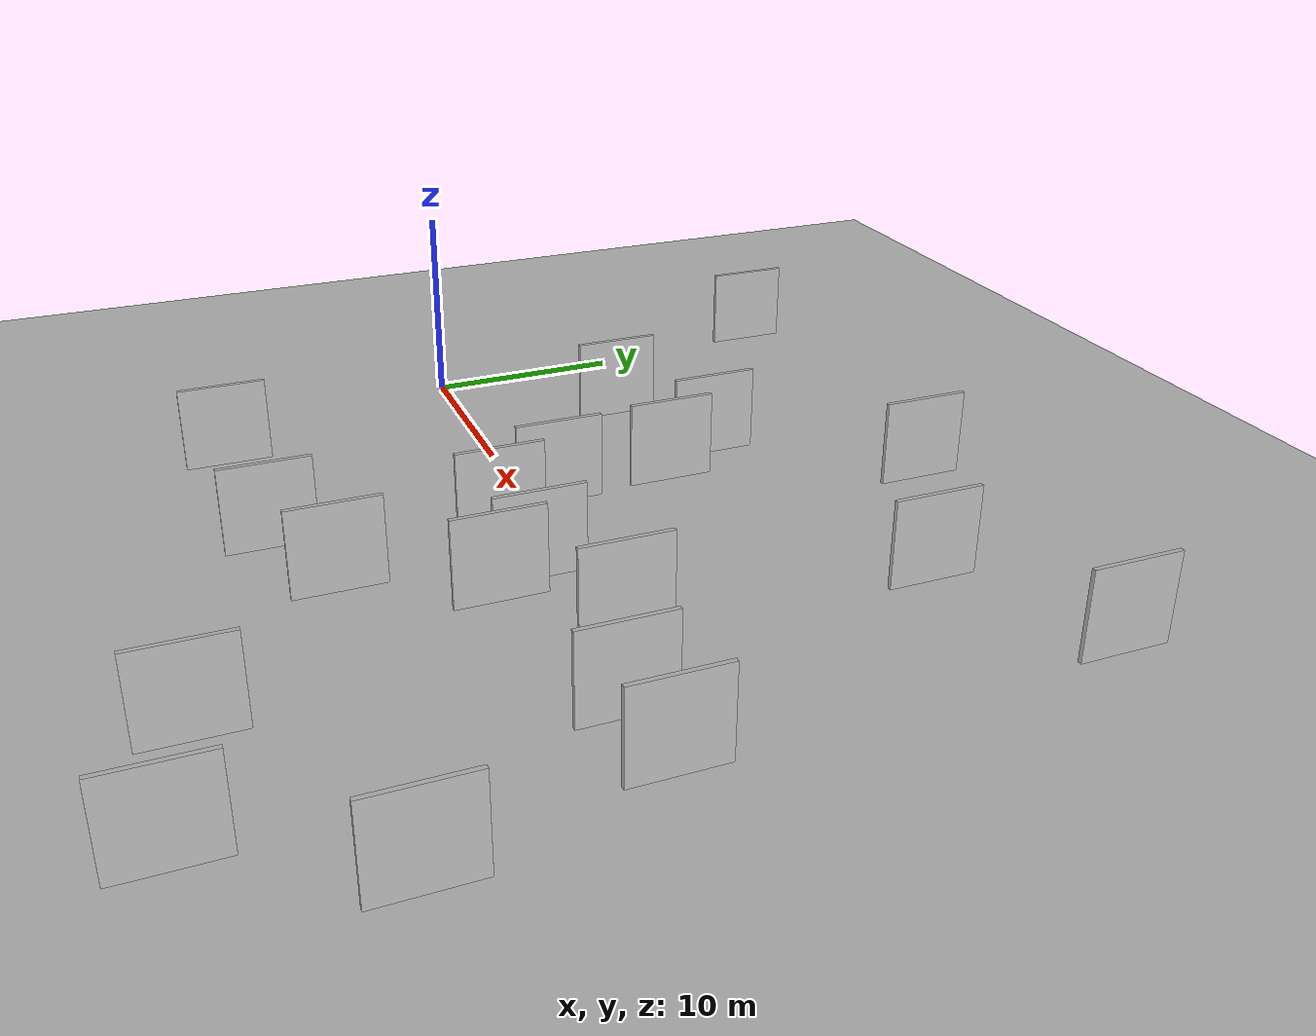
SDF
<?xml version="1.0" encoding="utf-8"?>

<sdf version="1.6">

   <world name="default">

      <gui fullscreen="0">

         <camera name="user_camera">

            <pose>-15 0 4.57585 0 0 0</pose>

            <view_controller>orbit</view_controller>

         </camera>

      </gui>

      <scene>

         <sky>

           <clouds>

             <speed>12</speed>

           </clouds>

         </sky>

         <ambient>0.4 0.4 0.4 1</ambient>

         <background>0.7 0.7 0.7 1</background>

         <shadows>1</shadows>

      </scene>

      <gravity>0 0 -9.8066</gravity>

      <magnetic_field>6e-06 2.3e-05 -4.2e-05</magnetic_field>

      <physics default="0" name="default_physics" type="ode">

         <ode>

            <solver>

               <type>quick</type>

               <iters>10</iters>

               <sor>1.0</sor>

               <use_dynamic_moi_rescaling>0</use_dynamic_moi_rescaling>

            </solver>

            <constraints>

               <cfm>0</cfm>

               <erp>0.2</erp>

               <contact_max_correcting_vel>100</contact_max_correcting_vel>

               <contact_surface_layer>0.001</contact_surface_layer>

            </constraints>

         </ode>

         <max_step_size>0.004</max_step_size>

         <real_time_factor>1</real_time_factor>

         <real_time_update_rate>250</real_time_update_rate>

      </physics>

      <light name="sun" type="directional">

         <cast_shadows>1</cast_shadows>

         <pose>0 0 10 0 0 0</pose>

         <diffuse>0.8 0.8 0.8 1</diffuse>

         <specular>0.2 0.2 0.2 1</specular>

         <attenuation>

            <range>1000</range>

            <constant>0.9</constant>

            <linear>0.01</linear>

            <quadratic>0.001</quadratic>

         </attenuation>

         <direction>-0.5 0.1 -0.9</direction>

      </light>

      <include>

         <name>ground_plane_1</name>

         <uri>model://HANNAS_ground_plane</uri>

         <pose>0 0 0  0 0 0</pose>

      </include>

      <include>

         <name>ground_plane_2</name>

         <uri>model://HANNAS_ground_plane</uri>

         <pose>100 0 0  0 0 0</pose>

      </include>

      <model name="HANNAS_wall_1">

         <static>1</static>

         <pose frame="">32.8743 -17.5760 2.5 0.000000 0.000000 1.570796</pose>

         <link name="link">

            <pose frame="">0 0 2.00 0 0 0</pose>

            <collision name="collision">

               <geometry>

                  <box>

                     <size>4.00 0.2 4.00</size>

                  </box>

               </geometry>

               <max_contacts>10</max_contacts>

               <surface>

                  <contact>

                     <ode/>

                  </contact>

                  <bounce/>

                  <friction>

                     <torsional>

                        <ode/>

                     </torsional>

                     <ode/>

                  </friction>

               </surface>

            </collision>

            <visual name="visual">

               <cast_shadows>0</cast_shadows>

               <geometry>

                  <box>

                     <size>4.00 0.2 4.00</size>

                  </box>

               </geometry>

               <material>

                  <script>

                     <uri>model://HANNAS_wall/materials/scripts</uri>

                     <uri>model://HANNAS_wall/materials/textures</uri>

                     <name>vrc/HANNAS_wall</name>

                  </script>

               </material>

            </visual>

            <self_collide>0</self_collide>

            <enable_wind>0</enable_wind>

            <kinematic>0</kinematic>

         </link>

      </model>

      <model name="HANNAS_wall_2">

         <static>1</static>

         <pose frame="">28.0144 -5.0331 2.5 0.000000 0.000000 1.570796</pose>

         <link name="link">

            <pose frame="">0 0 2.00 0 0 0</pose>

            <collision name="collision">

               <geometry>

                  <box>

                     <size>4.00 0.2 4.00</size>

                  </box>

               </geometry>

               <max_contacts>10</max_contacts>

               <surface>

                  <contact>

                     <ode/>

                  </contact>

                  <bounce/>

                  <friction>

                     <torsional>

                        <ode/>

                     </torsional>

                     <ode/>

                  </friction>

               </surface>

            </collision>

            <visual name="visual">

               <cast_shadows>0</cast_shadows>

               <geometry>

                  <box>

                     <size>4.00 0.2 4.00</size>

                  </box>

               </geometry>

               <material>

                  <script>

                     <uri>model://HANNAS_wall/materials/scripts</uri>

                     <uri>model://HANNAS_wall/materials/textures</uri>

                     <name>vrc/HANNAS_wall</name>

                  </script>

               </material>

            </visual>

            <self_collide>0</self_collide>

            <enable_wind>0</enable_wind>

            <kinematic>0</kinematic>

         </link>

      </model>

      <model name="HANNAS_wall_3">

         <static>1</static>

         <pose frame="">18.4415 8.6974 2.5 0.000000 0.000000 1.570796</pose>

         <link name="link">

            <pose frame="">0 0 2.00 0 0 0</pose>

            <collision name="collision">

               <geometry>

                  <box>

                     <size>4.00 0.2 4.00</size>

                  </box>

               </geometry>

               <max_contacts>10</max_contacts>

               <surface>

                  <contact>

                     <ode/>

                  </contact>

                  <bounce/>

                  <friction>

                     <torsional>

                        <ode/>

                     </torsional>

                     <ode/>

                  </friction>

               </surface>

            </collision>

            <visual name="visual">

               <cast_shadows>0</cast_shadows>

               <geometry>

                  <box>

                     <size>4.00 0.2 4.00</size>

                  </box>

               </geometry>

               <material>

                  <script>

                     <uri>model://HANNAS_wall/materials/scripts</uri>

                     <uri>model://HANNAS_wall/materials/textures</uri>

                     <name>vrc/HANNAS_wall</name>

                  </script>

               </material>

            </visual>

            <self_collide>0</self_collide>

            <enable_wind>0</enable_wind>

            <kinematic>0</kinematic>

         </link>

      </model>

      <model name="HANNAS_wall_4">

         <static>1</static>

         <pose frame="">33.0097 11.7984 2.5 0.000000 0.000000 1.570796</pose>

         <link name="link">

            <pose frame="">0 0 2.00 0 0 0</pose>

            <collision name="collision">

               <geometry>

                  <box>

                     <size>4.00 0.2 4.00</size>

                  </box>

               </geometry>

               <max_contacts>10</max_contacts>

               <surface>

                  <contact>

                     <ode/>

                  </contact>

                  <bounce/>

                  <friction>

                     <torsional>

                        <ode/>

                     </torsional>

                     <ode/>

                  </friction>

               </surface>

            </collision>

            <visual name="visual">

               <cast_shadows>0</cast_shadows>

               <geometry>

                  <box>

                     <size>4.00 0.2 4.00</size>

                  </box>

               </geometry>

               <material>

                  <script>

                     <uri>model://HANNAS_wall/materials/scripts</uri>

                     <uri>model://HANNAS_wall/materials/textures</uri>

                     <name>vrc/HANNAS_wall</name>

                  </script>

               </material>

            </visual>

            <self_collide>0</self_collide>

            <enable_wind>0</enable_wind>

            <kinematic>0</kinematic>

         </link>

      </model>

      <model name="HANNAS_wall_5">

         <static>1</static>

         <pose frame="">11.1217 -13.3748 2.5 0.000000 0.000000 1.570796</pose>

         <link name="link">

            <pose frame="">0 0 2.00 0 0 0</pose>

            <collision name="collision">

               <geometry>

                  <box>

                     <size>4.00 0.2 4.00</size>

                  </box>

               </geometry>

               <max_contacts>10</max_contacts>

               <surface>

                  <contact>

                     <ode/>

                  </contact>

                  <bounce/>

                  <friction>

                     <torsional>

                        <ode/>

                     </torsional>

                     <ode/>

                  </friction>

               </surface>

            </collision>

            <visual name="visual">

               <cast_shadows>0</cast_shadows>

               <geometry>

                  <box>

                     <size>4.00 0.2 4.00</size>

                  </box>

               </geometry>

               <material>

                  <script>

                     <uri>model://HANNAS_wall/materials/scripts</uri>

                     <uri>model://HANNAS_wall/materials/textures</uri>

                     <name>vrc/HANNAS_wall</name>

                  </script>

               </material>

            </visual>

            <self_collide>0</self_collide>

            <enable_wind>0</enable_wind>

            <kinematic>0</kinematic>

         </link>

      </model>

      <model name="HANNAS_wall_6">

         <static>1</static>

         <pose frame="">40.7295 -2.8819 2.5 0.000000 0.000000 1.570796</pose>

         <link name="link">

            <pose frame="">0 0 2.00 0 0 0</pose>

            <collision name="collision">

               <geometry>

                  <box>

                     <size>4.00 0.2 4.00</size>

                  </box>

               </geometry>

               <max_contacts>10</max_contacts>

               <surface>

                  <contact>

                     <ode/>

                  </contact>

                  <bounce/>

                  <friction>

                     <torsional>

                        <ode/>

                     </torsional>

                     <ode/>

                  </friction>

               </surface>

            </collision>

            <visual name="visual">

               <cast_shadows>0</cast_shadows>

               <geometry>

                  <box>

                     <size>4.00 0.2 4.00</size>

                  </box>

               </geometry>

               <material>

                  <script>

                     <uri>model://HANNAS_wall/materials/scripts</uri>

                     <uri>model://HANNAS_wall/materials/textures</uri>

                     <name>vrc/HANNAS_wall</name>

                  </script>

               </material>

            </visual>

            <self_collide>0</self_collide>

            <enable_wind>0</enable_wind>

            <kinematic>0</kinematic>

         </link>

      </model>

      <model name="HANNAS_wall_7">

         <static>1</static>

         <pose frame="">20.7189 0.0154 2.5 0.000000 0.000000 1.570796</pose>

         <link name="link">

            <pose frame="">0 0 2.00 0 0 0</pose>

            <collision name="collision">

               <geometry>

                  <box>

                     <size>4.00 0.2 4.00</size>

                  </box>

               </geometry>

               <max_contacts>10</max_contacts>

               <surface>

                  <contact>

                     <ode/>

                  </contact>

                  <bounce/>

                  <friction>

                     <torsional>

                        <ode/>

                     </torsional>

                     <ode/>

                  </friction>

               </surface>

            </collision>

            <visual name="visual">

               <cast_shadows>0</cast_shadows>

               <geometry>

                  <box>

                     <size>4.00 0.2 4.00</size>

                  </box>

               </geometry>

               <material>

                  <script>

                     <uri>model://HANNAS_wall/materials/scripts</uri>

                     <uri>model://HANNAS_wall/materials/textures</uri>

                     <name>vrc/HANNAS_wall</name>

                  </script>

               </material>

            </visual>

            <self_collide>0</self_collide>

            <enable_wind>0</enable_wind>

            <kinematic>0</kinematic>

         </link>

      </model>

      <model name="HANNAS_wall_8">

         <static>1</static>

         <pose frame="">26.8570 -2.9525 2.5 0.000000 0.000000 1.570796</pose>

         <link name="link">

            <pose frame="">0 0 2.00 0 0 0</pose>

            <collision name="collision">

               <geometry>

                  <box>

                     <size>4.00 0.2 4.00</size>

                  </box>

               </geometry>

               <max_contacts>10</max_contacts>

               <surface>

                  <contact>

                     <ode/>

                  </contact>

                  <bounce/>

                  <friction>

                     <torsional>

                        <ode/>

                     </torsional>

                     <ode/>

                  </friction>

               </surface>

            </collision>

            <visual name="visual">

               <cast_shadows>0</cast_shadows>

               <geometry>

                  <box>

                     <size>4.00 0.2 4.00</size>

                  </box>

               </geometry>

               <material>

                  <script>

                     <uri>model://HANNAS_wall/materials/scripts</uri>

                     <uri>model://HANNAS_wall/materials/textures</uri>

                     <name>vrc/HANNAS_wall</name>

                  </script>

               </material>

            </visual>

            <self_collide>0</self_collide>

            <enable_wind>0</enable_wind>

            <kinematic>0</kinematic>

         </link>

      </model>

      <model name="HANNAS_wall_9">

         <static>1</static>

         <pose frame="">37.1280 -3.2717 2.5 0.000000 0.000000 1.570796</pose>

         <link name="link">

            <pose frame="">0 0 2.00 0 0 0</pose>

            <collision name="collision">

               <geometry>

                  <box>

                     <size>4.00 0.2 4.00</size>

                  </box>

               </geometry>

               <max_contacts>10</max_contacts>

               <surface>

                  <contact>

                     <ode/>

                  </contact>

                  <bounce/>

                  <friction>

                     <torsional>

                        <ode/>

                     </torsional>

                     <ode/>

                  </friction>

               </surface>

            </collision>

            <visual name="visual">

               <cast_shadows>0</cast_shadows>

               <geometry>

                  <box>

                     <size>4.00 0.2 4.00</size>

                  </box>

               </geometry>

               <material>

                  <script>

                     <uri>model://HANNAS_wall/materials/scripts</uri>

                     <uri>model://HANNAS_wall/materials/textures</uri>

                     <name>vrc/HANNAS_wall</name>

                  </script>

               </material>

            </visual>

            <self_collide>0</self_collide>

            <enable_wind>0</enable_wind>

            <kinematic>0</kinematic>

         </link>

      </model>

      <model name="HANNAS_wall_10">

         <static>1</static>

         <pose frame="">12.4296 6.0405 2.5 0.000000 0.000000 1.570796</pose>

         <link name="link">

            <pose frame="">0 0 2.00 0 0 0</pose>

            <collision name="collision">

               <geometry>

                  <box>

                     <size>4.00 0.2 4.00</size>

                  </box>

               </geometry>

               <max_contacts>10</max_contacts>

               <surface>

                  <contact>

                     <ode/>

                  </contact>

                  <bounce/>

                  <friction>

                     <torsional>

                        <ode/>

                     </torsional>

                     <ode/>

                  </friction>

               </surface>

            </collision>

            <visual name="visual">

               <cast_shadows>0</cast_shadows>

               <geometry>

                  <box>

                     <size>4.00 0.2 4.00</size>

                  </box>

               </geometry>

               <material>

                  <script>

                     <uri>model://HANNAS_wall/materials/scripts</uri>

                     <uri>model://HANNAS_wall/materials/textures</uri>

                     <name>vrc/HANNAS_wall</name>

                  </script>

               </material>

            </visual>

            <self_collide>0</self_collide>

            <enable_wind>0</enable_wind>

            <kinematic>0</kinematic>

         </link>

      </model>

      <model name="HANNAS_wall_11">

         <static>1</static>

         <pose frame="">43.0251 -11.9939 2.5 0.000000 0.000000 1.570796</pose>

         <link name="link">

            <pose frame="">0 0 2.00 0 0 0</pose>

            <collision name="collision">

               <geometry>

                  <box>

                     <size>4.00 0.2 4.00</size>

                  </box>

               </geometry>

               <max_contacts>10</max_contacts>

               <surface>

                  <contact>

                     <ode/>

                  </contact>

                  <bounce/>

                  <friction>

                     <torsional>

                        <ode/>

                     </torsional>

                     <ode/>

                  </friction>

               </surface>

            </collision>

            <visual name="visual">

               <cast_shadows>0</cast_shadows>

               <geometry>

                  <box>

                     <size>4.00 0.2 4.00</size>

                  </box>

               </geometry>

               <material>

                  <script>

                     <uri>model://HANNAS_wall/materials/scripts</uri>

                     <uri>model://HANNAS_wall/materials/textures</uri>

                     <name>vrc/HANNAS_wall</name>

                  </script>

               </material>

            </visual>

            <self_collide>0</self_collide>

            <enable_wind>0</enable_wind>

            <kinematic>0</kinematic>

         </link>

      </model>

      <model name="HANNAS_wall_12">

         <static>1</static>

         <pose frame="">24.5792 16.5338 2.5 0.000000 0.000000 1.570796</pose>

         <link name="link">

            <pose frame="">0 0 2.00 0 0 0</pose>

            <collision name="collision">

               <geometry>

                  <box>

                     <size>4.00 0.2 4.00</size>

                  </box>

               </geometry>

               <max_contacts>10</max_contacts>

               <surface>

                  <contact>

                     <ode/>

                  </contact>

                  <bounce/>

                  <friction>

                     <torsional>

                        <ode/>

                     </torsional>

                     <ode/>

                  </friction>

               </surface>

            </collision>

            <visual name="visual">

               <cast_shadows>0</cast_shadows>

               <geometry>

                  <box>

                     <size>4.00 0.2 4.00</size>

                  </box>

               </geometry>

               <material>

                  <script>

                     <uri>model://HANNAS_wall/materials/scripts</uri>

                     <uri>model://HANNAS_wall/materials/textures</uri>

                     <name>vrc/HANNAS_wall</name>

                  </script>

               </material>

            </visual>

            <self_collide>0</self_collide>

            <enable_wind>0</enable_wind>

            <kinematic>0</kinematic>

         </link>

      </model>

      <model name="HANNAS_wall_13">

         <static>1</static>

         <pose frame="">20.4362 5.5870 2.5 0.000000 0.000000 1.570796</pose>

         <link name="link">

            <pose frame="">0 0 2.00 0 0 0</pose>

            <collision name="collision">

               <geometry>

                  <box>

                     <size>4.00 0.2 4.00</size>

                  </box>

               </geometry>

               <max_contacts>10</max_contacts>

               <surface>

                  <contact>

                     <ode/>

                  </contact>

                  <bounce/>

                  <friction>

                     <torsional>

                        <ode/>

                     </torsional>

                     <ode/>

                  </friction>

               </surface>

            </collision>

            <visual name="visual">

               <cast_shadows>0</cast_shadows>

               <geometry>

                  <box>

                     <size>4.00 0.2 4.00</size>

                  </box>

               </geometry>

               <material>

                  <script>

                     <uri>model://HANNAS_wall/materials/scripts</uri>

                     <uri>model://HANNAS_wall/materials/textures</uri>

                     <name>vrc/HANNAS_wall</name>

                  </script>

               </material>

            </visual>

            <self_collide>0</self_collide>

            <enable_wind>0</enable_wind>

            <kinematic>0</kinematic>

         </link>

      </model>

      <model name="HANNAS_wall_14">

         <static>1</static>

         <pose frame="">20.2271 -12.8143 2.5 0.000000 0.000000 1.570796</pose>

         <link name="link">

            <pose frame="">0 0 2.00 0 0 0</pose>

            <collision name="collision">

               <geometry>

                  <box>

                     <size>4.00 0.2 4.00</size>

                  </box>

               </geometry>

               <max_contacts>10</max_contacts>

               <surface>

                  <contact>

                     <ode/>

                  </contact>

                  <bounce/>

                  <friction>

                     <torsional>

                        <ode/>

                     </torsional>

                     <ode/>

                  </friction>

               </surface>

            </collision>

            <visual name="visual">

               <cast_shadows>0</cast_shadows>

               <geometry>

                  <box>

                     <size>4.00 0.2 4.00</size>

                  </box>

               </geometry>

               <material>

                  <script>

                     <uri>model://HANNAS_wall/materials/scripts</uri>

                     <uri>model://HANNAS_wall/materials/textures</uri>

                     <name>vrc/HANNAS_wall</name>

                  </script>

               </material>

            </visual>

            <self_collide>0</self_collide>

            <enable_wind>0</enable_wind>

            <kinematic>0</kinematic>

         </link>

      </model>

      <model name="HANNAS_wall_15">

         <static>1</static>

         <pose frame="">40.2539 15.5681 2.5 0.000000 0.000000 1.570796</pose>

         <link name="link">

            <pose frame="">0 0 2.00 0 0 0</pose>

            <collision name="collision">

               <geometry>

                  <box>

                     <size>4.00 0.2 4.00</size>

                  </box>

               </geometry>

               <max_contacts>10</max_contacts>

               <surface>

                  <contact>

                     <ode/>

                  </contact>

                  <bounce/>

                  <friction>

                     <torsional>

                        <ode/>

                     </torsional>

                     <ode/>

                  </friction>

               </surface>

            </collision>

            <visual name="visual">

               <cast_shadows>0</cast_shadows>

               <geometry>

                  <box>

                     <size>4.00 0.2 4.00</size>

                  </box>

               </geometry>

               <material>

                  <script>

                     <uri>model://HANNAS_wall/materials/scripts</uri>

                     <uri>model://HANNAS_wall/materials/textures</uri>

                     <name>vrc/HANNAS_wall</name>

                  </script>

               </material>

            </visual>

            <self_collide>0</self_collide>

            <enable_wind>0</enable_wind>

            <kinematic>0</kinematic>

         </link>

      </model>

      <model name="HANNAS_wall_16">

         <static>1</static>

         <pose frame="">24.8909 -10.8664 2.5 0.000000 0.000000 1.570796</pose>

         <link name="link">

            <pose frame="">0 0 2.00 0 0 0</pose>

            <collision name="collision">

               <geometry>

                  <box>

                     <size>4.00 0.2 4.00</size>

                  </box>

               </geometry>

               <max_contacts>10</max_contacts>

               <surface>

                  <contact>

                     <ode/>

                  </contact>

                  <bounce/>

                  <friction>

                     <torsional>

                        <ode/>

                     </torsional>

                     <ode/>

                  </friction>

               </surface>

            </collision>

            <visual name="visual">

               <cast_shadows>0</cast_shadows>

               <geometry>

                  <box>

                     <size>4.00 0.2 4.00</size>

                  </box>

               </geometry>

               <material>

                  <script>

                     <uri>model://HANNAS_wall/materials/scripts</uri>

                     <uri>model://HANNAS_wall/materials/textures</uri>

                     <name>vrc/HANNAS_wall</name>

                  </script>

               </material>

            </visual>

            <self_collide>0</self_collide>

            <enable_wind>0</enable_wind>

            <kinematic>0</kinematic>

         </link>

      </model>

      <model name="HANNAS_wall_17">

         <static>1</static>

         <pose frame="">31.8797 -1.1872 2.5 0.000000 0.000000 1.570796</pose>

         <link name="link">

            <pose frame="">0 0 2.00 0 0 0</pose>

            <collision name="collision">

               <geometry>

                  <box>

                     <size>4.00 0.2 4.00</size>

                  </box>

               </geometry>

               <max_contacts>10</max_contacts>

               <surface>

                  <contact>

                     <ode/>

                  </contact>

                  <bounce/>

                  <friction>

                     <torsional>

                        <ode/>

                     </torsional>

                     <ode/>

                  </friction>

               </surface>

            </collision>

            <visual name="visual">

               <cast_shadows>0</cast_shadows>

               <geometry>

                  <box>

                     <size>4.00 0.2 4.00</size>

                  </box>

               </geometry>

               <material>

                  <script>

                     <uri>model://HANNAS_wall/materials/scripts</uri>

                     <uri>model://HANNAS_wall/materials/textures</uri>

                     <name>vrc/HANNAS_wall</name>

                  </script>

               </material>

            </visual>

            <self_collide>0</self_collide>

            <enable_wind>0</enable_wind>

            <kinematic>0</kinematic>

         </link>

      </model>

      <model name="HANNAS_wall_18">

         <static>1</static>

         <pose frame="">39.2280 -18.9818 2.5 0.000000 0.000000 1.570796</pose>

         <link name="link">

            <pose frame="">0 0 2.00 0 0 0</pose>

            <collision name="collision">

               <geometry>

                  <box>

                     <size>4.00 0.2 4.00</size>

                  </box>

               </geometry>

               <max_contacts>10</max_contacts>

               <surface>

                  <contact>

                     <ode/>

                  </contact>

                  <bounce/>

                  <friction>

                     <torsional>

                        <ode/>

                     </torsional>

                     <ode/>

                  </friction>

               </surface>

            </collision>

            <visual name="visual">

               <cast_shadows>0</cast_shadows>

               <geometry>

                  <box>

                     <size>4.00 0.2 4.00</size>

                  </box>

               </geometry>

               <material>

                  <script>

                     <uri>model://HANNAS_wall/materials/scripts</uri>

                     <uri>model://HANNAS_wall/materials/textures</uri>

                     <name>vrc/HANNAS_wall</name>

                  </script>

               </material>

            </visual>

            <self_collide>0</self_collide>

            <enable_wind>0</enable_wind>

            <kinematic>0</kinematic>

         </link>

      </model>

      <model name="HANNAS_wall_19">

         <static>1</static>

         <pose frame="">22.4096 -3.2440 2.5 0.000000 0.000000 1.570796</pose>

         <link name="link">

            <pose frame="">0 0 2.00 0 0 0</pose>

            <collision name="collision">

               <geometry>

                  <box>

                     <size>4.00 0.2 4.00</size>

                  </box>

               </geometry>

               <max_contacts>10</max_contacts>

               <surface>

                  <contact>

                     <ode/>

                  </contact>

                  <bounce/>

                  <friction>

                     <torsional>

                        <ode/>

                     </torsional>

                     <ode/>

                  </friction>

               </surface>

            </collision>

            <visual name="visual">

               <cast_shadows>0</cast_shadows>

               <geometry>

                  <box>

                     <size>4.00 0.2 4.00</size>

                  </box>

               </geometry>

               <material>

                  <script>

                     <uri>model://HANNAS_wall/materials/scripts</uri>

                     <uri>model://HANNAS_wall/materials/textures</uri>

                     <name>vrc/HANNAS_wall</name>

                  </script>

               </material>

            </visual>

            <self_collide>0</self_collide>

            <enable_wind>0</enable_wind>

            <kinematic>0</kinematic>

         </link>

      </model>

      <model name="HANNAS_wall_20">

         <static>1</static>

         <pose frame="">5.0179 17.0387 2.5 0.000000 0.000000 1.570796</pose>

         <link name="link">

            <pose frame="">0 0 2.00 0 0 0</pose>

            <collision name="collision">

               <geometry>

                  <box>

                     <size>4.00 0.2 4.00</size>

                  </box>

               </geometry>

               <max_contacts>10</max_contacts>

               <surface>

                  <contact>

                     <ode/>

                  </contact>

                  <bounce/>

                  <friction>

                     <torsional>

                        <ode/>

                     </torsional>

                     <ode/>

                  </friction>

               </surface>

            </collision>

            <visual name="visual">

               <cast_shadows>0</cast_shadows>

               <geometry>

                  <box>

                     <size>4.00 0.2 4.00</size>

                  </box>

               </geometry>

               <material>

                  <script>

                     <uri>model://HANNAS_wall/materials/scripts</uri>

                     <uri>model://HANNAS_wall/materials/textures</uri>

                     <name>vrc/HANNAS_wall</name>

                  </script>

               </material>

            </visual>

            <self_collide>0</self_collide>

            <enable_wind>0</enable_wind>

            <kinematic>0</kinematic>

         </link>

      </model>

   </world>

</sdf>

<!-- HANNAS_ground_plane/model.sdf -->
<sdf version="1.4">
<model name="HANNAS_ground_plane">
  <static>true</static>
    <link name="link">
      <collision name="collision">
        <geometry>
          <plane>
            <normal>0 0 1</normal>
            <size>1000 1000</size>
          </plane>
        </geometry>
        <surface>
          <friction>
            <ode>
              <mu>100</mu>
              <mu2>50</mu2>
            </ode>
          </friction>
        </surface>
      </collision>
      <visual name="visual">
        <cast_shadows>false</cast_shadows>
        <geometry>
          <plane>
            <normal>0 0 1</normal>
            <size>1000 1000</size>
          </plane>
        </geometry>
        <material>
          <script>
            <uri>model://HANNAS_ground_plane/materials/scripts/HANNAS_ground_plane.material</uri>
	    <uri>model://HANNAS_ground_plane/materials/textures</uri>
            <name>HANNASGroundPlane/Image</name>
          </script>
        </material>
      </visual>
    </link>
  </model>
</sdf>
